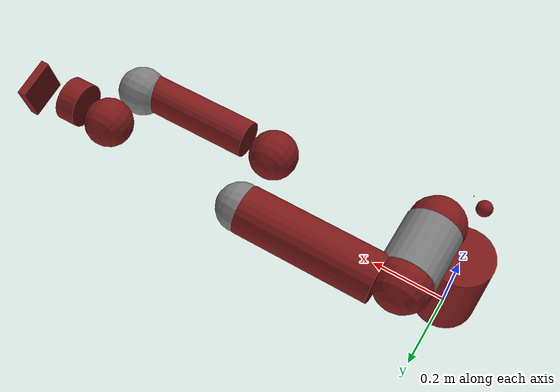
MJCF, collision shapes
<?xml version="1.0" ?>
<mujoco model="sawyer">
  <compiler angle="radian"/>
  <actuator>
    <motor ctrllimited="true" ctrlrange="-80.0 80.0" joint="right_j0" name="torq_right_j0"/>
    <motor ctrllimited="true" ctrlrange="-80.0 80.0" joint="right_j1" name="torq_right_j1"/>
    <motor ctrllimited="true" ctrlrange="-40.0 40.0" joint="right_j2" name="torq_right_j2"/>
    <motor ctrllimited="true" ctrlrange="-40.0 40.0" joint="right_j3" name="torq_right_j3"/>
    <motor ctrllimited="true" ctrlrange="-9.0 9.0" joint="right_j4" name="torq_right_j4"/>
    <motor ctrllimited="true" ctrlrange="-9.0 9.0" joint="right_j5" name="torq_right_j5"/>
    <motor ctrllimited="true" ctrlrange="-9.0 9.0" joint="right_j6" name="torq_right_j6"/>
  </actuator>
  <asset>
    <!-- base material and mesh -->
    <material name="Mtl1.017" specular="0.5" shininess="0.225" rgba="1.000000 0.000000 0.000000 1.000000"/>
    <material name="Mtl2.017" specular="0.5" shininess="0.225" rgba="0.286275 0.286275 0.286275 1.000000"/>
    <mesh name="base_0" file="obj_meshes/base/base_0.obj"/>
    <mesh name="base_1" file="obj_meshes/base/base_1.obj"/>
    <!-- head material and mesh -->
    <material name="Mtl1" specular="0.5" shininess="0.225" rgba="1.000000 0.000000 0.000000 1.000000"/>
    <material name="Mtl2" specular="0.5" shininess="0.225" rgba="0.000000 0.000000 0.000000 1.000000"/>
    <material name="Mtl4" specular="0.5" shininess="0.225" rgba="1.000000 1.000000 1.000000 1.000000"/>
    <material name="Mtl5" specular="0.5" shininess="0.225" rgba="0.870588 0.309804 0.086275 1.000000"/>
    <material name="Mtl6" specular="0.5" shininess="0.225" rgba="0.286275 0.286275 0.286275 1.000000"/>
    <material name="Mtl7" specular="0.5" shininess="0.225" rgba="0.698039 0.698039 0.698039 1.000000"/>
    <material name="Mtl8" specular="0.5" shininess="0.225" rgba="0.792157 0.819608 0.929412 1.000000"/>
    <material name="Mtl9" specular="0.5" shininess="0.225" rgba="0.250980 0.250980 0.250980 1.000000"/>
    <material name="Mtla" specular="0.5" shininess="0.225" rgba="0.000000 0.000000 1.000000 1.000000"/>
    <material name="Mtlb" specular="0.5" shininess="0.225" rgba="0.290196 0.290196 0.290196 1.000000"/>
    <mesh name="head_0" file="obj_meshes/head/head_0.obj"/>
    <mesh name="head_1" file="obj_meshes/head/head_1.obj" inertia="shell"/>
    <mesh name="head_2" file="obj_meshes/head/head_2.obj"/>
    <mesh name="head_3" file="obj_meshes/head/head_3.obj"/>
    <mesh name="head_4" file="obj_meshes/head/head_4.obj" inertia="shell"/>
    <mesh name="head_5" file="obj_meshes/head/head_5.obj"/>
    <mesh name="head_6" file="obj_meshes/head/head_6.obj"/>
    <mesh name="head_7" file="obj_meshes/head/head_7.obj"/>
    <mesh name="head_8" file="obj_meshes/head/head_8.obj"/>
    <mesh name="head_9" file="obj_meshes/head/head_9.obj"/>
    <!-- l0 material and mesh -->
    <material name="Mtl1.014" specular="0.5" shininess="0.225" rgba="0.286275 0.286275 0.286275 1.000000"/>
    <material name="Mtl2.014" specular="0.5" shininess="0.225" rgba="1.000000 1.000000 1.000000 1.000000"/>
    <material name="Mtl3.013" specular="0.5" shininess="0.225" rgba="0.168627 0.152941 0.141176 1.000000"/>
    <material name="Mtl4.012" specular="0.5" shininess="0.225" rgba="1.000000 0.403922 0.121569 1.000000"/>
    <material name="Mtl5.010" specular="0.5" shininess="0.225" rgba="1.000000 0.000000 0.000000 1.000000"/>
    <material name="Mtl6.008" specular="0.5" shininess="0.225" rgba="0.792157 0.819608 0.929412 1.000000"/>
    <material name="Mtl7.007" specular="0.5" shininess="0.225" rgba="0.250980 0.250980 0.250980 1.000000"/>
    <mesh name="l0_0" file="obj_meshes/l0/l0_0.obj"/>
    <mesh name="l0_1" file="obj_meshes/l0/l0_1.obj"/>
    <mesh name="l0_2" file="obj_meshes/l0/l0_2.obj"/>
    <mesh name="l0_3" file="obj_meshes/l0/l0_3.obj"/>
    <mesh name="l0_4" file="obj_meshes/l0/l0_4.obj"/>
    <mesh name="l0_5" file="obj_meshes/l0/l0_5.obj"/>
    <mesh name="l0_6" file="obj_meshes/l0/l0_6.obj"/>
    <!-- l1 material and mesh -->
    <material name="Mtl1.004" specular="0.5" shininess="0.225" rgba="1.000000 1.000000 1.000000 1.000000"/>
    <material name="Mtl2.004" specular="0.5" shininess="0.225" rgba="1.000000 0.000000 0.000000 1.000000"/>
    <material name="Mtl3.003" specular="0.5" shininess="0.225" rgba="0.286275 0.286275 0.286275 1.000000"/>
    <mesh name="l1_0" file="obj_meshes/l1/l1_0.obj"/>
    <mesh name="l1_1" file="obj_meshes/l1/l1_1.obj"/>
    <mesh name="l1_2" file="obj_meshes/l1/l1_2.obj"/>
    <!-- l2 material and mesh -->
    <material name="Mtl1.005" specular="0.5" shininess="0.225" rgba="1.000000 0.000000 0.000000 1.000000"/>
    <material name="Mtl2.005" specular="0.5" shininess="0.225" rgba="0.286275 0.286275 0.286275 1.000000"/>
    <material name="Mtl3.004" specular="0.5" shininess="0.225" rgba="1.000000 1.000000 1.000000 1.000000"/>
    <material name="Mtl4.003" specular="0.5" shininess="0.225" rgba="0.792157 0.819608 0.929412 1.000000"/>
    <material name="Mtl5.003" specular="0.5" shininess="0.225" rgba="0.105882 0.105882 0.105882 1.000000"/>
    <mesh name="l2_0" file="obj_meshes/l2/l2_0.obj"/>
    <mesh name="l2_1" file="obj_meshes/l2/l2_1.obj"/>
    <mesh name="l2_2" file="obj_meshes/l2/l2_2.obj"/>
    <mesh name="l2_3" file="obj_meshes/l2/l2_3.obj"/>
    <mesh name="l2_4" file="obj_meshes/l2/l2_4.obj"/>
    <!-- l3 material and mesh -->
    <material name="Mtl1.007" specular="0.5" shininess="0.225" rgba="0.290196 0.290196 0.290196 1.000000"/>
    <material name="Mtl2.007" specular="0.5" shininess="0.225" rgba="1.000000 1.000000 1.000000 1.000000"/>
    <material name="Mtl3.006" specular="0.5" shininess="0.225" rgba="1.000000 0.000000 0.000000 1.000000"/>
    <material name="Mtl4.005" specular="0.5" shininess="0.225" rgba="0.792157 0.819608 0.929412 1.000000"/>
    <mesh name="l3_0" file="obj_meshes/l3/l3_0.obj"/>
    <mesh name="l3_1" file="obj_meshes/l3/l3_1.obj"/>
    <mesh name="l3_2" file="obj_meshes/l3/l3_2.obj"/>
    <mesh name="l3_3" file="obj_meshes/l3/l3_3.obj"/>
    <!-- l4 material and mesh -->
    <material name="Mtl1.010" specular="0.5" shininess="0.225" rgba="0.286275 0.286275 0.286275 1.000000"/>
    <material name="Mtl2.010" specular="0.5" shininess="0.225" rgba="1.000000 0.000000 0.000000 1.000000"/>
    <material name="Mtl3.009" specular="0.5" shininess="0.225" rgba="0.000000 0.000000 0.000000 1.000000"/>
    <material name="Mtl4.008" specular="0.5" shininess="0.225" rgba="0.792157 0.819608 0.929412 1.000000"/>
    <material name="Mtl5.006" specular="0.5" shininess="0.225" rgba="1.000000 1.000000 1.000000 1.000000"/>
    <material name="Mtl6.004" specular="0.5" shininess="0.225" rgba="0.749020 0.749020 0.749020 1.000000"/>
    <material name="Mtl7.004" specular="0.5" shininess="0.225" rgba="0.290196 0.290196 0.290196 1.000000"/>
    <material name="Mtl8.002" specular="0.5" shininess="0.225" rgba="0.250980 0.250980 0.250980 1.000000"/>
    <mesh name="l4_0" file="obj_meshes/l4/l4_0.obj"/>
    <mesh name="l4_1" file="obj_meshes/l4/l4_1.obj"/>
    <mesh name="l4_2" file="obj_meshes/l4/l4_2.obj"/>
    <mesh name="l4_3" file="obj_meshes/l4/l4_3.obj"/>
    <mesh name="l4_4" file="obj_meshes/l4/l4_4.obj"/>
    <mesh name="l4_5" file="obj_meshes/l4/l4_5.obj"/>
    <mesh name="l4_6" file="obj_meshes/l4/l4_6.obj"/>
    <mesh name="l4_7" file="obj_meshes/l4/l4_7.obj"/>
    <!-- l5 material and mesh -->
    <material name="Mtl1_001" specular="0.5" shininess="0.225" rgba="1.000000 0.000000 0.000000 1.000000"/>
    <material name="Mtl2_001" specular="0.5" shininess="0.225" rgba="1.000000 1.000000 1.000000 1.000000"/>
    <material name="Mtl3_001" specular="0.5" shininess="0.225" rgba="0.286275 0.286275 0.286275 1.000000"/>
    <material name="Mtl4_001" specular="0.5" shininess="0.225" rgba="0.866667 0.905882 1.000000 1.000000"/>
    <material name="Mtl5_001" specular="0.5" shininess="0.225" rgba="0.501961 0.501961 0.501961 1.000000"/>
    <mesh name="l5_0" file="obj_meshes/l5/l5_0.obj"/>
    <mesh name="l5_1" file="obj_meshes/l5/l5_1.obj"/>
    <mesh name="l5_2" file="obj_meshes/l5/l5_2.obj"/>
    <mesh name="l5_3" file="obj_meshes/l5/l5_3.obj"/>
    <mesh name="l5_4" file="obj_meshes/l5/l5_4.obj"/>
    <!-- l6 material and mesh -->
    <material name="Mtl1.012" specular="0.5" shininess="0.225" rgba="0.298039 0.298039 0.298039 1.000000"/>
    <material name="Mtl2.012" specular="0.5" shininess="0.225" rgba="0.282353 0.282353 0.282353 1.000000"/>
    <material name="Mtl3.011" specular="0.5" shininess="0.225" rgba="0.286275 0.286275 0.286275 1.000000"/>
    <material name="Mtl4.010" specular="0.5" shininess="0.225" rgba="1.000000 0.000000 0.000000 1.000000"/>
    <material name="Mtl5.008" specular="0.5" shininess="0.225" rgba="1.000000 1.000000 1.000000 1.000000"/>
    <material name="Mtl6.006" specular="0.5" shininess="0.225" rgba="1.000000 0.403922 0.121569 1.000000"/>
    <mesh name="l6_0" file="obj_meshes/l6/l6_0.obj"/>
    <mesh name="l6_1" file="obj_meshes/l6/l6_1.obj"/>
    <mesh name="l6_2" file="obj_meshes/l6/l6_2.obj"/>
    <mesh name="l6_3" file="obj_meshes/l6/l6_3.obj"/>
    <mesh name="l6_4" file="obj_meshes/l6/l6_4.obj"/>
    <mesh name="l6_5" file="obj_meshes/l6/l6_5.obj"/>
    <!-- Custom gripper mesh -->
    <material name="gripper_mat" specular="0.5" shininess="0.3" rgba="0.8 0.8 0.8 1"/>
    <mesh name="custom_gripper" file="Shield.stl" scale="0.001 0.001 0.001"/>
  </asset>
  <worldbody>
    <body name="base" pos="0 0 0">
      <!-- robot view -->
      <camera mode="fixed" name="robotview" pos="1.0 0 0.4" quat="0.653 0.271 0.271 0.653"/>
      <inertial diaginertia="0 0 0" mass="0" pos="0 0 0"/>
      <!-- mount attached here -->
      <body name="right_arm_base_link" pos="0 0 0">
        <site name="right_center" pos="0 0 0" size="0.01" rgba="1 0.3 0.3 1" group="2"/>
        <inertial diaginertia="0.00740351 0.00681776 0.00672942" mass="2.0687" pos="-0.0006241 -2.8025e-05 0.065404" quat="-0.209285 0.674441 0.227335 0.670558"/>
        <geom mesh="base_0" material="Mtl2.017" type="mesh" contype="0" conaffinity="0" group="1"/>
        <geom mesh="base_1" material="Mtl1.017" type="mesh" contype="0" conaffinity="0" group="1"/>
        <geom pos="0 0 0.12" rgba="0.5 0.1 0.1 1" size="0.08 0.12" type="cylinder" name="base_col"/>
        <body name="right_l0" pos="0 0 0.08">
          <inertial diaginertia="0.0651588 0.0510944 0.0186218" mass="5.3213" pos="0.024366 0.010969 0.14363" quat="0.894823 0.00899958 -0.170275 0.412573"/>
          <joint axis="0 0 1" limited="true" name="right_j0" pos="0 0 0" range="-3.0503 3.0503"/>
          <geom mesh="l0_0" material="Mtl7.007" type="mesh" contype="0" conaffinity="0" group="1"/>
          <geom mesh="l0_1" material="Mtl6.008" type="mesh" contype="0" conaffinity="0" group="1"/>
          <geom mesh="l0_2" material="Mtl5.010" type="mesh" contype="0" conaffinity="0" group="1"/>
          <geom mesh="l0_3" material="Mtl4.012" type="mesh" contype="0" conaffinity="0" group="1"/>
          <geom mesh="l0_4" material="Mtl3.013" type="mesh" contype="0" conaffinity="0" group="1"/>
          <geom mesh="l0_5" material="Mtl2.014" type="mesh" contype="0" conaffinity="0" group="1"/>
          <geom mesh="l0_6" material="Mtl1.014" type="mesh" contype="0" conaffinity="0" group="1"/>
          <geom pos="0.08 0 0.23" rgba="0.5 0.1 0.1 1" size="0.07" name="link0_collision"/>
          <body name="head" pos="0 0 0.2965">
            <inertial diaginertia="0.0118334 0.00827089 0.00496574" mass="1.5795" pos="0.0053207 -2.6549e-05 0.1021" quat="0.999993 7.08405e-05 -0.00359857 -0.000626247"/>
            <!--Don't want to control the head joint so remove it from the kinematic tree-->
            <geom mesh="head_0" material="Mtlb" type="mesh" contype="0" conaffinity="0" group="1"/>
            <geom mesh="head_1" material="Mtla" type="mesh" contype="0" conaffinity="0" group="1"/>
            <geom mesh="head_2" material="Mtl8" type="mesh" contype="0" conaffinity="0" group="1"/>
            <geom mesh="head_3" material="Mtl9" type="mesh" contype="0" conaffinity="0" group="1"/>
            <geom mesh="head_4" material="Mtl7" type="mesh" contype="0" conaffinity="0" group="1"/>
            <geom mesh="head_5" material="Mtl6" type="mesh" contype="0" conaffinity="0" group="1"/>
            <geom mesh="head_6" material="Mtl4" type="mesh" contype="0" conaffinity="0" group="1"/>
            <geom mesh="head_7" material="Mtl2" type="mesh" contype="0" conaffinity="0" group="1"/>
            <geom mesh="head_8" material="Mtl1" type="mesh" contype="0" conaffinity="0" group="1"/>
            <geom mesh="head_9" material="Mtl5" type="mesh" contype="0" conaffinity="0" group="1"/>
            <geom pos="0 0 0.08" rgba="0.5 0.1 0.1 1" size="0.018" name="head_collision"/>
            <body name="screen" pos="0.03 0 0.105" quat="0.5 0.5 0.5 0.5">
              <inertial diaginertia="1e-08 1e-08 1e-08" mass="0.0001" pos="0 0 0"/>
              <geom rgba="0.2 0.2 0.2 1" size="0.001" name="screen_collision"/>
            </body>
            <body name="head_camera" pos="0.0228027 0 0.216572" quat="0.342813 -0.618449 0.618449 -0.342813">
              <inertial diaginertia="0 0 0" mass="0" pos="0.0228027 0 0.216572" quat="0.342813 -0.618449 0.618449 -0.342813"/>
            </body>
          </body>
          <body name="right_torso_itb" pos="-0.055 0 0.22" quat="0.707107 0 -0.707107 0">
            <inertial diaginertia="1e-08 1e-08 1e-08" mass="0.0001" pos="0 0 0"/>
          </body>
          <body name="right_l1" pos="0.081 0.05 0.237" quat="0.5 -0.5 0.5 0.5">
            <inertial diaginertia="0.0224339 0.0221624 0.0097097" mass="4.505" pos="-0.0030849 -0.026811 0.092521" quat="0.424888 0.891987 0.132364 -0.0794296"/>
            <joint axis="0 0 1" limited="true" name="right_j1" pos="0 0 0" range="-3.8095 2.2736"/>
            <geom mesh="l1_0" material="Mtl3.003" type="mesh" contype="0" conaffinity="0" group="1"/>
            <geom mesh="l1_1" material="Mtl2.004" type="mesh" contype="0" conaffinity="0" group="1"/>
            <geom mesh="l1_2" material="Mtl1.004" type="mesh" contype="0" conaffinity="0" group="1"/>
            <geom pos="0 0 0.1225" rgba="0.5 0.1 0.1 1" size="0.07" name="link1_collision"/>
            <body name="right_l2" pos="0 -0.14 0.1425" quat="0.707107 0.707107 0 0">
              <inertial diaginertia="0.0257928 0.025506 0.00292515" mass="1.745" pos="-0.00016044 -0.014967 0.13582" quat="0.707831 -0.0524761 0.0516007 0.702537"/>
              <joint axis="0 0 1" limited="true" name="right_j2" pos="0 0 0" range="-3.0426 3.0426"/>
              <geom mesh="l2_0" material="Mtl4.003" type="mesh" contype="0" conaffinity="0" group="1"/>
              <geom mesh="l2_1" material="Mtl5.003" type="mesh" contype="0" conaffinity="0" group="1"/>
              <geom mesh="l2_2" material="Mtl3.004" type="mesh" contype="0" conaffinity="0" group="1"/>
              <geom mesh="l2_3" material="Mtl2.005" type="mesh" contype="0" conaffinity="0" group="1"/>
              <geom mesh="l2_4" material="Mtl1.005" type="mesh" contype="0" conaffinity="0" group="1"/>
              <geom pos="0 0 0.08" rgba="0.5 0.1 0.1 1" size="0.06 0.17" type="cylinder" name="link2_collision"/>
              <body name="right_l3" pos="0 -0.042 0.26" quat="0.707107 -0.707107 0 0">
                <inertial diaginertia="0.0102404 0.0096997 0.00369622" mass="2.5097" pos="-0.0048135 -0.0281 -0.084154" quat="0.902999 0.385391 -0.0880901 0.168247"/>
                <joint axis="0 0 1" limited="true" name="right_j3" pos="0 0 0" range="-3.0439 3.0439"/>
                <geom mesh="l3_0" material="Mtl4.005" type="mesh" contype="0" conaffinity="0" group="1"/>
                <geom mesh="l3_1" material="Mtl3.006" type="mesh" contype="0" conaffinity="0" group="1"/>
                <geom mesh="l3_2" material="Mtl2.007" type="mesh" contype="0" conaffinity="0" group="1"/>
                <geom mesh="l3_3" material="Mtl1.007" type="mesh" contype="0" conaffinity="0" group="1"/>
                <geom pos="0 -0.01 -0.12" rgba="0.5 0.1 0.1 1" size="0.06" name="link3_collision"/>
                <body name="right_l4" pos="0 -0.125 -0.1265" quat="0.707107 0.707107 0 0">
                  <inertial diaginertia="0.0136549 0.0135493 0.00127353" mass="1.1136" pos="-0.0018844 0.0069001 0.1341" quat="0.803612 0.031257 -0.0298334 0.593582"/>
                  <joint axis="0 0 1" limited="true" name="right_j4" pos="0 0 0" range="-2.9761 2.9761"/>
                  <geom mesh="l4_0" material="Mtl8.002" type="mesh" contype="0" conaffinity="0" group="1"/>
                  <geom mesh="l4_1" material="Mtl7.004" type="mesh" contype="0" conaffinity="0" group="1"/>
                  <geom mesh="l4_2" material="Mtl6.004" type="mesh" contype="0" conaffinity="0" group="1"/>
                  <geom mesh="l4_3" material="Mtl5.006" type="mesh" contype="0" conaffinity="0" group="1"/>
                  <geom mesh="l4_4" material="Mtl4.008" type="mesh" contype="0" conaffinity="0" group="1"/>
                  <geom mesh="l4_5" material="Mtl3.009" type="mesh" contype="0" conaffinity="0" group="1"/>
                  <geom mesh="l4_6" material="Mtl2.010" type="mesh" contype="0" conaffinity="0" group="1"/>
                  <geom mesh="l4_7" material="Mtl1.010" type="mesh" contype="0" conaffinity="0" group="1"/>
                  <geom pos="0 0 0.11" rgba="0.5 0.1 0.1 1" size="0.045 0.15" type="cylinder" name="link4_collision"/>
                  <body name="right_arm_itb" pos="-0.055 0 0.075" quat="0.707107 0 -0.707107 0">
                    <inertial diaginertia="1e-08 1e-08 1e-08" mass="0.0001" pos="0 0 0"/>
                  </body>
                  <body name="right_l5" pos="0 0.031 0.275" quat="0.707107 -0.707107 0 0">
                    <inertial diaginertia="0.00474131 0.00422857 0.00190672" mass="1.5625" pos="0.0061133 -0.023697 0.076416" quat="0.404076 0.9135 0.0473125 0.00158335"/>
                    <joint axis="0 0 1" limited="true" name="right_j5" pos="0 0 0" range="-2.9761 2.9761" damping="0.2"/>
                    <geom mesh="l5_0" material="Mtl5_001" type="mesh" contype="0" conaffinity="0" group="1"/>
                    <geom mesh="l5_1" material="Mtl4_001" type="mesh" contype="0" conaffinity="0" group="1"/>
                    <geom mesh="l5_2" material="Mtl2_001" type="mesh" contype="0" conaffinity="0" group="1"/>
                    <geom mesh="l5_3" material="Mtl1_001" type="mesh" contype="0" conaffinity="0" group="1"/>
                    <geom mesh="l5_4" material="Mtl3_001" type="mesh" contype="0" conaffinity="0" group="1"/>
                    <geom pos="0 0 0.1" rgba="0.5 0.1 0.1 1" size="0.06" name="link5_collision"/>
                    <body name="right_hand_camera" pos="0.039552 -0.033 0.0695" quat="0.707107 0 0.707107 0">
                      <inertial diaginertia="0 0 0" mass="0" pos="0.039552 -0.033 0.0695" quat="0.707107 0 0.707107 0"/>
                    </body>
                    <body name="right_wrist" pos="0 0 0.10541" quat="0.707107 0.707107 0 0">
                      <inertial diaginertia="0 0 0" mass="0" pos="0 0 0.10541" quat="0.707107 0.707107 0 0"/>
                    </body>
                    <body name="right_l6" pos="0 -0.11 0.1053" quat="0.0616248 0.06163 -0.704416 0.704416">
                      <inertial diaginertia="0.000360258 0.000311068 0.000214974" mass="0.3292" pos="-8.0726e-06 0.0085838 -0.0049566" quat="0.479044 0.515636 -0.513069 0.491322"/>
                      <joint axis="0 0 1" limited="true" name="right_j6" pos="0 0 0" range="-4.7124 4.7124" damping="0.1"/>
                      <geom mesh="l6_0" material="Mtl6.006" type="mesh" contype="0" conaffinity="0" group="1"/>
                      <geom mesh="l6_1" material="Mtl5.008" type="mesh" contype="0" conaffinity="0" group="1"/>
                      <geom mesh="l6_2" material="Mtl4.010" type="mesh" contype="0" conaffinity="0" group="1"/>
                      <geom mesh="l6_3" material="Mtl3.011" type="mesh" contype="0" conaffinity="0" group="1"/>
                      <geom mesh="l6_4" material="Mtl2.012" type="mesh" contype="0" conaffinity="0" group="1"/>
                      <geom mesh="l6_5" material="Mtl1.012" type="mesh" contype="0" conaffinity="0" group="1"/>
                      <geom pos="0 0.015 -0.01" rgba="0.5 0.1 0.1 1" size="0.055 0.025" type="cylinder" name="link6_collision"/>

                      <!-- Custom Code -->

                      <body name="shield" pos="0 0 0.0" quat="1 0 0 0">
                        <geom type="mesh"
                              mesh="custom_gripper"
                              material="gripper_mat"
                              contype="0"
                              conaffinity="0"
                              group="1"
                              rgba="0.8 0.8 0.8 1"/>

                        <!-- Optional collision geometry (simple shape for physics) -->
                        <geom type="box"
                              pos="0 0 0.1"
                              size="0.05 0.05 0.01"
                              rgba="0.5 0.1 0.1 0.3"
                              name="shield_collision"/>
                      </body>
                      <body name="right_hand" pos="0 0 0.024" quat="0.707105 0 0 0.707108">
                        <!-- This camera points out from the eef. -->
                        <camera mode="fixed" name="eye_in_hand" pos="0.05 0 0" quat="0 0.707108 0.707108 0" fovy="75"/>
                        <!-- To add gripper -->
                      </body>
                      <!-- End of Custom Code-->

                    </body>
                  </body>
                  <body name="right_l4_2" pos="0 0 0">
                    <inertial diaginertia="1e-08 1e-08 1e-08" mass="1e-08" pos="1e-08 1e-08 1e-08" quat="0.820473 0.339851 -0.17592 0.424708"/>
                    <geom pos="0 0.01 0.26" size="0.06" name="right_l4_2"/>
                  </body>
                </body>
              </body>
              <body name="right_l2_2" pos="0 0 0">
                <inertial diaginertia="1e-08 1e-08 1e-08" mass="1e-08" pos="1e-08 1e-08 1e-08" quat="0.820473 0.339851 -0.17592 0.424708"/>
                <geom pos="0 0 0.26" size="0.06" name="right_l2_2"/>
              </body>
            </body>
            <body name="right_l1_2" pos="0 0 0">
              <inertial diaginertia="1e-08 1e-08 1e-08" mass="1e-08" pos="1e-08 1e-08 1e-08" quat="0.820473 0.339851 -0.17592 0.424708"/>
              <geom pos="0 0 0.035" size="0.07 0.07" type="cylinder" name="right_l1_2"/>
            </body>
          </body>
        </body>
      </body>
    </body>
  </worldbody>
</mujoco>
